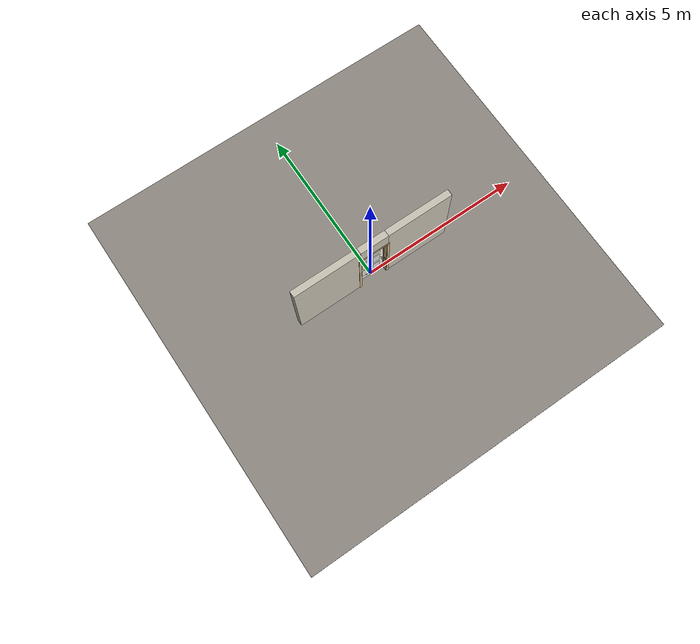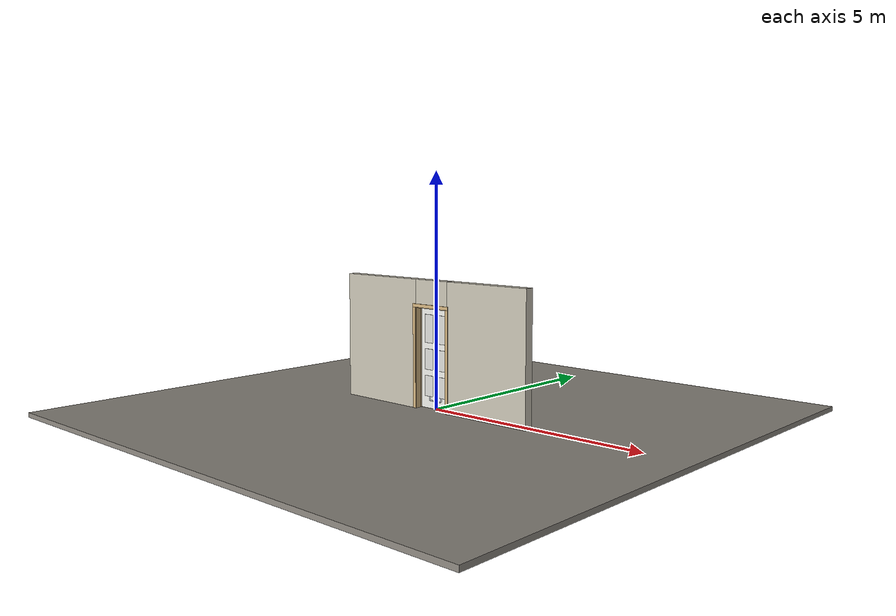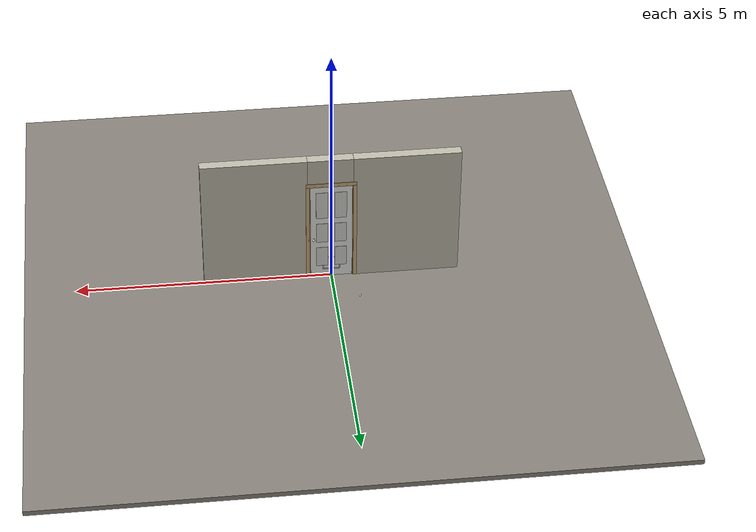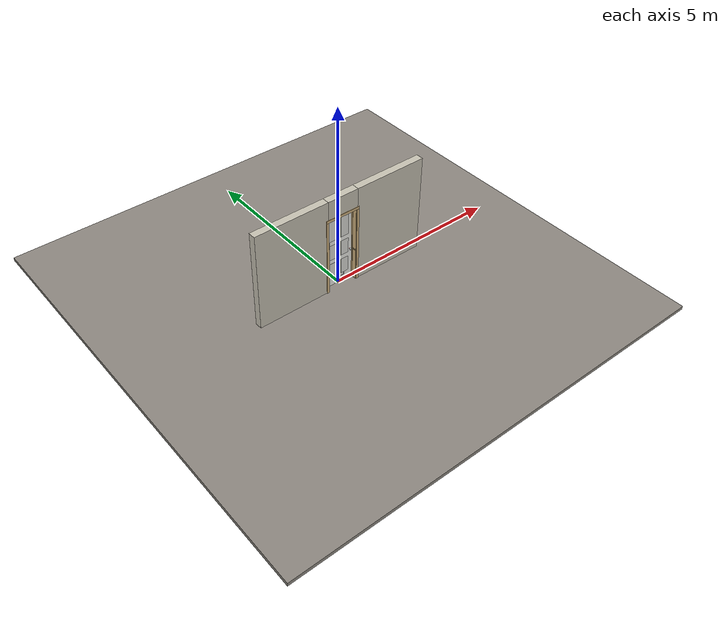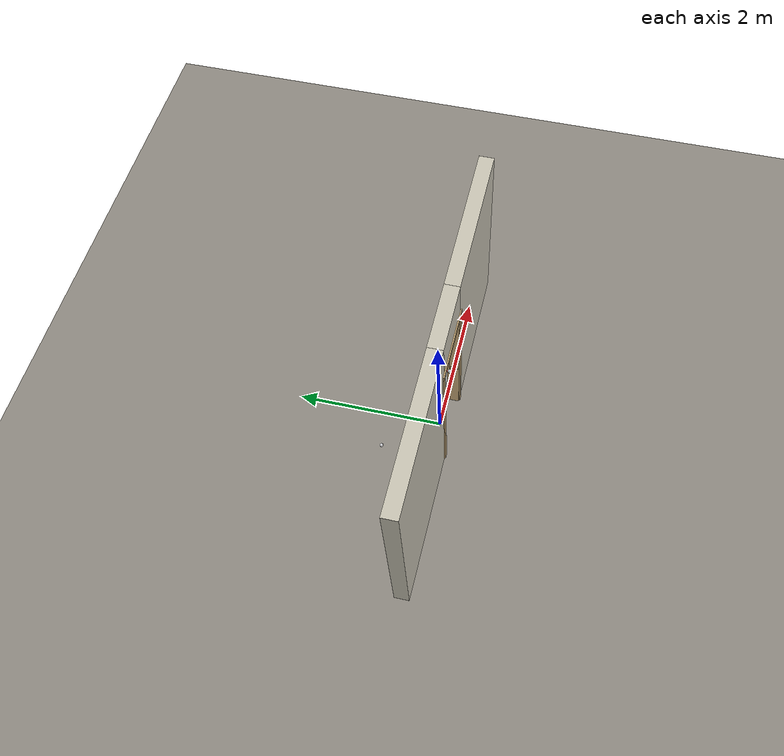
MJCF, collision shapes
<?xml version="1.0" ?>
<mujoco model="db0521_swing_single_full">
  <compiler angle="radian" meshdir="../../hardware" texturedir="../../textures" autolimits="true" inertiafromgeom="false"/>
  <option timestep="0.002" integrator="implicitfast" cone="elliptic" impratio="10" noslip_iterations="3">
    <flag multiccd="enable"/>
  </option>
  <size memory="16M"/>
  <default>
    <geom condim="4" solref="0.005 1" solimp="0.95 0.99 0.001"/>
    <joint solreflimit="0.005 1" solimplimit="0.95 0.99 0.001"/>
    <tendon solreflimit="0.005 1"/>
    <equality solref="0.002 1"/>
  </default>
  <visual>
    <headlight ambient="0.4 0.4 0.4" diffuse="0.7 0.7 0.7" specular="0.2 0.2 0.2"/>
    <quality shadowsize="4096"/>
    <map znear="0.01" zfar="60"/>
  </visual>
  <asset>
    <mesh name="hinge_c20a5829de" file="hinge_c20a5829de.obj"/>
    <mesh name="hinge_jamb_20499e6581" file="hinge_jamb_20499e6581.obj"/>
    <mesh name="knob_98a7916ed0" file="knob_98a7916ed0.obj"/>
    <material name="mat_floor" rgba="0.55 0.53 0.5 1" specular="0.2" shininess="0.15" reflectance="0"/>
    <material name="mat_wall" rgba="0.78 0.76 0.7 1" specular="0.2" shininess="0.1" reflectance="0"/>
    <material name="mat_hinge" rgba="0.55 0.56 0.58 1" specular="0.8" shininess="0.55" reflectance="0.4"/>
    <material name="mat_leaf" rgba="0.93 0.93 0.91 1" specular="0.2" shininess="0.47" reflectance="0"/>
    <material name="mat_leaf_panel" rgba="0.856 0.856 0.837 1" specular="0.2" shininess="0.47" reflectance="0"/>
    <material name="mat_op_glass_clear" rgba="0.85 0.92 0.95 0.25" specular="0.2" shininess="0.95" reflectance="0.1"/>
    <material name="mat_trim" rgba="0.85 0.66 0.3 1" specular="0.8" shininess="0.75" reflectance="0.4"/>
    <material name="mat_bolt" rgba="0.85 0.66 0.3 1" specular="0.8" shininess="0.75" reflectance="0.4"/>
    <material name="mat_frame" rgba="0.82 0.7 0.5 1" specular="0.2" shininess="0.45" reflectance="0"/>
    <material name="mat_seal" rgba="0.1 0.1 0.1 1" specular="0.2" shininess="0.1" reflectance="0"/>
    <material name="mat_vent" rgba="0.8 0.81 0.83 1" specular="0.8" shininess="0.6" reflectance="0.4"/>
    <material name="mat_stop" rgba="0.9 0.9 0.92 1" specular="0.8" shininess="0.9" reflectance="0.4"/>
    <texture name="skybox" type="skybox" builtin="gradient" rgb1="0.6 0.7 0.85" rgb2="0.9 0.92 0.95" width="256" height="256"/>
  </asset>
  <worldbody>
    <light name="sun" pos="1.5 -2.5 4" dir="-0.3 0.5 -0.8" directional="true" diffuse="0.8 0.8 0.8" specular="0.3 0.3 0.3" castshadow="true"/>
    <light name="fill" pos="-1.5 2.5 3" dir="0.3 -0.5 -0.7" directional="true" diffuse="0.35 0.35 0.4" castshadow="false"/>
    <camera name="robot_view" pos="0 -2.713312 1.812087" xyaxes="1 0 0 0 0.26963 0.962964" fovy="52"/>
    <camera name="far_view" pos="0 2.562312 1.812087" xyaxes="-1 0 0 0 -0.26963 0.962964" fovy="52"/>
    <camera name="iso" pos="2.004737 -2.291262 2.234138" xyaxes="0.741536 0.670913 0 -0.242917 0.268487 0.932151" fovy="46"/>
    <camera name="detail_handle" pos="0.526 -0.8625 1.194" xyaxes="0.97561 0.219512 0 -0.070934 0.315262 0.94635" fovy="38"/>
    <geom name="floor" type="box" size="6 6 0.05" pos="0 0 -0.05" material="mat_floor" group="0" contype="1" conaffinity="1" friction="0.8 0.005 0.0001" density="2400"/>
    <geom name="wall_left" type="box" size="1.0355 0.1 1.3735" pos="-1.4645 -0.0755 1.3735" material="mat_wall" group="0" contype="1" conaffinity="1" friction="0.6 0.005 0.0001" density="800"/>
    <geom name="wall_right" type="box" size="1.0205 0.1 1.3735" pos="1.4795 -0.0755 1.3735" material="mat_wall" group="0" contype="1" conaffinity="1" friction="0.6 0.005 0.0001" density="800"/>
    <geom name="wall_header" type="box" size="0.444 0.1 0.2755" pos="0.015 -0.0755 2.4715" material="mat_wall" group="0" contype="1" conaffinity="1" friction="0.6 0.005 0.0001" density="800"/>
    <geom name="hinge_0_jamb" type="mesh" mesh="hinge_jamb_20499e6581" pos="-0.407 0.0245 0.259" quat="0 1 0 0" material="mat_hinge" group="1" contype="0" conaffinity="0" density="7850"/>
    <geom name="hinge_1_jamb" type="mesh" mesh="hinge_jamb_20499e6581" pos="-0.407 0.0245 1.0708" quat="0 1 0 0" material="mat_hinge" group="1" contype="0" conaffinity="0" density="7850"/>
    <geom name="hinge_2_jamb" type="mesh" mesh="hinge_jamb_20499e6581" pos="-0.407 0.0245 1.9526" quat="0 1 0 0" material="mat_hinge" group="1" contype="0" conaffinity="0" density="7850"/>
    <geom name="jamb_hinge" type="box" size="0.0095 0.1 1.0735" pos="-0.4195 -0.0755 1.0735" material="mat_frame" group="0" contype="1" conaffinity="1" friction="0.6 0.005 0.0001" density="400"/>
    <geom name="strike_914_wall_n" type="box" size="0.0245 0.083825 0.0167" pos="0.4345 -0.091675 0.914" material="mat_frame" group="0" contype="1" conaffinity="1" friction="0.6 0.005 0.0001" density="400"/>
    <geom name="strike_914_wall_p" type="box" size="0.0245 0.008 0.0167" pos="0.4345 0.01585 0.914" material="mat_frame" group="0" contype="1" conaffinity="1" friction="0.6 0.005 0.0001" density="400"/>
    <geom name="strike_914_ramp" type="box" size="0.0245 0.01649 0.0167" pos="0.439136 0.028673 0.914" quat="0.977148 0 0 -0.212558" material="mat_frame" group="0" contype="1" conaffinity="1" friction="0.12 0.005 0.0001" density="400"/>
    <geom name="strike_914_back" type="box" size="0.01615 0.00785 0.0167" pos="0.44285 0 0.914" material="mat_frame" group="0" contype="1" conaffinity="1" friction="0.6 0.005 0.0001" density="400"/>
    <geom name="jamb_strike_0" type="box" size="0.0245 0.1 0.44865" pos="0.4345 -0.0755 0.44865" material="mat_frame" group="0" contype="1" conaffinity="1" friction="0.6 0.005 0.0001" density="400"/>
    <geom name="jamb_strike_1" type="box" size="0.0245 0.1 0.60815" pos="0.4345 -0.0755 1.53885" material="mat_frame" group="0" contype="1" conaffinity="1" friction="0.6 0.005 0.0001" density="400"/>
    <geom name="jamb_head" type="box" size="0.444 0.1 0.0095" pos="0.015 -0.0755 2.1565" material="mat_frame" group="0" contype="1" conaffinity="1" friction="0.6 0.005 0.0001" density="400"/>
    <geom name="head_stud" type="box" size="0.444 0.1 0.015" pos="0.015 -0.0755 2.181" material="mat_wall" group="0" contype="1" conaffinity="1" friction="0.6 0.005 0.0001" density="500"/>
    <geom name="stop_hinge" type="box" size="0.0055 0.016 1.0735" pos="-0.4045 -0.034 1.0735" material="mat_frame" group="0" contype="1" conaffinity="1" friction="0.6 0.005 0.0001" density="400"/>
    <geom name="stop_strike" type="box" size="0.0055 0.016 1.0735" pos="0.4045 -0.034 1.0735" material="mat_frame" group="0" contype="1" conaffinity="1" friction="0.6 0.005 0.0001" density="400"/>
    <geom name="stop_head" type="box" size="0.41 0.016 0.0055" pos="0 -0.034 2.1415" material="mat_frame" group="0" contype="1" conaffinity="1" friction="0.6 0.005 0.0001" density="400"/>
    <geom name="seal_hinge" type="box" size="0.004 0.002 1.0735" pos="-0.407 -0.0195 1.0735" material="mat_seal" group="1" contype="0" conaffinity="0" density="1100"/>
    <geom name="seal_strike" type="box" size="0.004 0.002 1.0735" pos="0.407 -0.0195 1.0735" material="mat_seal" group="1" contype="0" conaffinity="0" density="1100"/>
    <geom name="seal_head" type="box" size="0.39 0.002 0.008" pos="0 -0.0195 2.135" material="mat_seal" group="1" contype="0" conaffinity="0" density="1100"/>
    <geom name="casing_l_n" type="box" size="0.035 0.008 1.083" pos="-0.459 -0.1835 1.0735" material="mat_frame" group="2" contype="0" conaffinity="0" density="400"/>
    <geom name="casing_r_n" type="box" size="0.035 0.008 1.083" pos="0.459 -0.1835 1.0735" material="mat_frame" group="2" contype="0" conaffinity="0" density="400"/>
    <geom name="casing_h_n" type="box" size="0.494 0.008 0.035" pos="0 -0.1835 2.196" material="mat_frame" group="2" contype="0" conaffinity="0" density="400"/>
    <geom name="casing_l_p" type="box" size="0.035 0.008 1.083" pos="-0.459 0.0325 1.0735" material="mat_frame" group="2" contype="0" conaffinity="0" density="400"/>
    <geom name="casing_r_p" type="box" size="0.035 0.008 1.083" pos="0.459 0.0325 1.0735" material="mat_frame" group="2" contype="0" conaffinity="0" density="400"/>
    <geom name="casing_h_p" type="box" size="0.494 0.008 0.035" pos="0 0.0325 2.196" material="mat_frame" group="2" contype="0" conaffinity="0" density="400"/>
    <geom name="floor_stop_dome" type="sphere" size="0.025" pos="-0.487153 0.711177 0" material="mat_stop" group="0" contype="1" conaffinity="1" friction="0.6 0.005 0.0001" density="7000"/>
    <site name="approach_point" pos="0 -1.5 0" quat="1 0 0 0" size="0.05" rgba="0.2 0.9 0.2 0.5" group="4"/>
    <site name="goal_point" pos="0 1.5 0" quat="1 0 0 0" size="0.05" rgba="0.2 0.9 0.2 0.5" group="4"/>
    <site name="door_plane_center" pos="0 0 1.0735" quat="1 0 0 0" size="0.02" rgba="0.2 0.9 0.2 0.5" group="4"/>
    <body name="leaf_riser" pos="-0.41 0 0">
      <inertial pos="0.003 0.0245 0.055" mass="0.174012" quat="0.707107 0 0.707107 0" diaginertia="0.000017053 0.00002732 0.00002732"/>
      <joint name="leaf_rise" type="slide" axis="0 0 1" limited="true" range="0 0.0176" damping="1" armature="0.5"/>
      <geom name="leaf_riser_marker" type="cylinder" size="0.014 0.018" pos="0.003 0.0245 0.055" material="mat_hinge" group="1" contype="0" conaffinity="0" density="7850"/>
      <body name="leaf" pos="0 0 0">
        <inertial pos="0.392991 0.00069 1.016386" mass="13.430063" quat="-0.497761 0.500217 0.499845 0.502167" diaginertia="0.758987485 5.264368642 6.020047674"/>
        <joint name="leaf_hinge" type="hinge" axis="0 0 1" pos="0.003 0.0245 0" limited="true" range="0 1.658063" solreflimit="0.02 1" damping="0.218374" frictionloss="0.582834" armature="0.02"/>
        <geom name="leaf_slab" type="box" size="0.4065 0.0175 1.0618" pos="0.4095 0 1.0708" material="mat_leaf" group="0" contype="1" conaffinity="1" friction="0.35 0.005 0.0001" density="1"/>
        <geom name="leaf_panel_0_n" type="box" size="0.11575 0.003 0.220574" pos="0.22875 -0.0205 0.48317" material="mat_leaf_panel" group="1" contype="0" conaffinity="0" density="1"/>
        <geom name="leaf_panel_0_p" type="box" size="0.11575 0.003 0.220574" pos="0.22875 0.0205 0.48317" material="mat_leaf_panel" group="1" contype="0" conaffinity="0" density="1"/>
        <geom name="leaf_panel_1_n" type="box" size="0.11575 0.003 0.220574" pos="0.59025 -0.0205 0.48317" material="mat_leaf_panel" group="1" contype="0" conaffinity="0" density="1"/>
        <geom name="leaf_panel_1_p" type="box" size="0.11575 0.003 0.220574" pos="0.59025 0.0205 0.48317" material="mat_leaf_panel" group="1" contype="0" conaffinity="0" density="1"/>
        <geom name="leaf_panel_2_n" type="box" size="0.11575 0.003 0.220574" pos="0.22875 -0.0205 1.054317" material="mat_leaf_panel" group="1" contype="0" conaffinity="0" density="1"/>
        <geom name="leaf_panel_2_p" type="box" size="0.11575 0.003 0.220574" pos="0.22875 0.0205 1.054317" material="mat_leaf_panel" group="1" contype="0" conaffinity="0" density="1"/>
        <geom name="leaf_panel_3_n" type="box" size="0.11575 0.003 0.220574" pos="0.59025 -0.0205 1.054317" material="mat_leaf_panel" group="1" contype="0" conaffinity="0" density="1"/>
        <geom name="leaf_panel_3_p" type="box" size="0.11575 0.003 0.220574" pos="0.59025 0.0205 1.054317" material="mat_leaf_panel" group="1" contype="0" conaffinity="0" density="1"/>
        <geom name="leaf_panel_4_n" type="box" size="0.11575 0.003 0.300765" pos="0.22875 -0.0205 1.705655" material="mat_leaf_panel" group="1" contype="0" conaffinity="0" density="1"/>
        <geom name="leaf_panel_4_p" type="box" size="0.11575 0.003 0.300765" pos="0.22875 0.0205 1.705655" material="mat_leaf_panel" group="1" contype="0" conaffinity="0" density="1"/>
        <geom name="leaf_panel_5_n" type="box" size="0.11575 0.003 0.300765" pos="0.59025 -0.0205 1.705655" material="mat_leaf_panel" group="1" contype="0" conaffinity="0" density="1"/>
        <geom name="leaf_panel_5_p" type="box" size="0.11575 0.003 0.300765" pos="0.59025 0.0205 1.705655" material="mat_leaf_panel" group="1" contype="0" conaffinity="0" density="1"/>
        <geom name="hinge_0" type="mesh" mesh="hinge_c20a5829de" pos="0.003 0.0245 0.259" quat="0 1 0 0" material="mat_hinge" group="1" contype="0" conaffinity="0" density="7850"/>
        <geom name="hinge_1" type="mesh" mesh="hinge_c20a5829de" pos="0.003 0.0245 1.0708" quat="0 1 0 0" material="mat_hinge" group="1" contype="0" conaffinity="0" density="7850"/>
        <geom name="hinge_2" type="mesh" mesh="hinge_c20a5829de" pos="0.003 0.0245 1.9526" quat="0 1 0 0" material="mat_hinge" group="1" contype="0" conaffinity="0" density="7850"/>
        <geom name="leaf_latch_bolt_faceplate" type="box" size="0.0006 0.01235 0.0267" pos="0.8154 0 0.914" material="mat_bolt" group="1" contype="0" conaffinity="0" density="8500"/>
        <geom name="louver_vent_stile_n_l" type="box" size="0.012 0.002 0.137" pos="0.2475 -0.0195 0.314" material="mat_vent" group="2" contype="0" conaffinity="0" density="2700"/>
        <geom name="louver_vent_stile_n_r" type="box" size="0.012 0.002 0.137" pos="0.5715 -0.0195 0.314" material="mat_vent" group="2" contype="0" conaffinity="0" density="2700"/>
        <geom name="louver_vent_rail_n_b" type="box" size="0.15 0.002 0.012" pos="0.4095 -0.0195 0.177" material="mat_vent" group="2" contype="0" conaffinity="0" density="2700"/>
        <geom name="louver_vent_rail_n_t" type="box" size="0.15 0.002 0.012" pos="0.4095 -0.0195 0.451" material="mat_vent" group="2" contype="0" conaffinity="0" density="2700"/>
        <geom name="louver_vent_stile_p_l" type="box" size="0.012 0.002 0.137" pos="0.2475 0.0195 0.314" material="mat_vent" group="2" contype="0" conaffinity="0" density="2700"/>
        <geom name="louver_vent_stile_p_r" type="box" size="0.012 0.002 0.137" pos="0.5715 0.0195 0.314" material="mat_vent" group="2" contype="0" conaffinity="0" density="2700"/>
        <geom name="louver_vent_rail_p_b" type="box" size="0.15 0.002 0.012" pos="0.4095 0.0195 0.177" material="mat_vent" group="2" contype="0" conaffinity="0" density="2700"/>
        <geom name="louver_vent_rail_p_t" type="box" size="0.15 0.002 0.012" pos="0.4095 0.0195 0.451" material="mat_vent" group="2" contype="0" conaffinity="0" density="2700"/>
        <geom name="louver_vent_slat_0" type="box" size="0.15 0.0015 0.015" pos="0.4095 0 0.209833" quat="0.965926 -0.258819 0 0" material="mat_vent" group="2" contype="0" conaffinity="0" density="2700"/>
        <geom name="louver_vent_slat_1" type="box" size="0.15 0.0015 0.015" pos="0.4095 0 0.2515" quat="0.965926 -0.258819 0 0" material="mat_vent" group="2" contype="0" conaffinity="0" density="2700"/>
        <geom name="louver_vent_slat_2" type="box" size="0.15 0.0015 0.015" pos="0.4095 0 0.293167" quat="0.965926 -0.258819 0 0" material="mat_vent" group="2" contype="0" conaffinity="0" density="2700"/>
        <geom name="louver_vent_slat_3" type="box" size="0.15 0.0015 0.015" pos="0.4095 0 0.334833" quat="0.965926 -0.258819 0 0" material="mat_vent" group="2" contype="0" conaffinity="0" density="2700"/>
        <geom name="louver_vent_slat_4" type="box" size="0.15 0.0015 0.015" pos="0.4095 0 0.3765" quat="0.965926 -0.258819 0 0" material="mat_vent" group="2" contype="0" conaffinity="0" density="2700"/>
        <geom name="louver_vent_slat_5" type="box" size="0.15 0.0015 0.015" pos="0.4095 0 0.418167" quat="0.965926 -0.258819 0 0" material="mat_vent" group="2" contype="0" conaffinity="0" density="2700"/>
        <site name="leaf_edge_mid" pos="0.816 0 1.0618" quat="1 0 0 0" size="0.02" rgba="0.2 0.9 0.2 0.5" group="4"/>
        <body name="leaf_handle" pos="0.756 0 0.914">
          <inertial pos="0 -0.000502 0" mass="0.969385" quat="-0.5 0.5 -0.5 0.5" diaginertia="0.000215241 0.003035929 0.003035929"/>
          <joint name="leaf_handle_hinge" type="hinge" axis="0 -1 0" limited="true" range="0 0.8" damping="0.119588" frictionloss="0.032" stiffness="0.35" springref="-0.428571" armature="0.01"/>
          <geom name="leaf_handle_spindle" type="cylinder" size="0.006 0.0255" pos="0 0 0" quat="0.707107 -0.707107 0 0" material="mat_op_glass_clear" group="1" contype="0" conaffinity="0" density="7850"/>
          <geom name="leaf_handle_knob_n" type="mesh" mesh="knob_98a7916ed0" pos="0 -0.0175 0" quat="0.707107 0.707107 0 0" material="mat_op_glass_clear" group="1" contype="0" conaffinity="0" density="3000"/>
          <geom name="leaf_handle_knob_col_n" type="sphere" size="0.0234" pos="0 -0.0625 0" material="mat_op_glass_clear" group="0" contype="1" conaffinity="1" friction="0.9 0.01 0.0001" density="3000"/>
          <geom name="leaf_handle_knob_neck_n" type="cylinder" size="0.011 0.012" pos="0 -0.0295 0" quat="0.707107 -0.707107 0 0" material="mat_op_glass_clear" group="3" contype="1" conaffinity="1" rgba="0.8 0.3 0.3 0.25" friction="0.6 0.005 0.0001" density="3000"/>
          <geom name="leaf_handle_turn_button_n" type="cylinder" size="0.005 0.005" pos="0 -0.0873 0" quat="0.707107 -0.707107 0 0" material="mat_trim" group="1" contype="0" conaffinity="0" density="7100"/>
          <geom name="leaf_handle_knob_p" type="mesh" mesh="knob_98a7916ed0" pos="0 0.0175 0" quat="-0.707107 0.707107 0 0" material="mat_op_glass_clear" group="1" contype="0" conaffinity="0" density="3000"/>
          <geom name="leaf_handle_knob_col_p" type="sphere" size="0.0234" pos="0 0.0625 0" material="mat_op_glass_clear" group="0" contype="1" conaffinity="1" friction="0.9 0.01 0.0001" density="3000"/>
          <geom name="leaf_handle_knob_neck_p" type="cylinder" size="0.011 0.012" pos="0 0.0295 0" quat="0.707107 -0.707107 0 0" material="mat_op_glass_clear" group="3" contype="1" conaffinity="1" rgba="0.8 0.3 0.3 0.25" friction="0.6 0.005 0.0001" density="3000"/>
          <site name="leaf_handle_grip_n" pos="0 -0.0625 0" quat="1 0 0 0" size="0.012" rgba="0.2 0.9 0.2 0.5" group="4"/>
          <site name="leaf_handle_grip_p" pos="0 0.0625 0" quat="1 0 0 0" size="0.012" rgba="0.2 0.9 0.2 0.5" group="4"/>
        </body>
        <body name="leaf_latch_bolt" pos="0.816 0 0.914">
          <inertial pos="-0.00865 0 0" mass="0.041419" quat="0.92388 -0.382683 0 0" diaginertia="0.000000798 0.000005598 0.000005598"/>
          <joint name="leaf_latch_bolt_slide" type="slide" axis="-1 0 0" limited="true" range="0 0.0127" damping="2" frictionloss="0.3" stiffness="300" springref="-0.008333" armature="0.1"/>
          <geom name="leaf_latch_bolt_capsule" type="capsule" size="0.00635 0.015" pos="-0.00865 0 0" quat="0.707107 0 0.707107 0" material="mat_bolt" group="0" contype="1" conaffinity="1" friction="0.2 0.005 0.0001" density="8500"/>
        </body>
      </body>
    </body>
  </worldbody>
  <tendon>
    <fixed name="leaf_latch_bolt_coupling" limited="true" range="0 10">
      <joint joint="leaf_latch_bolt_slide" coef="1"/>
      <joint joint="leaf_handle_hinge" coef="-0.019538"/>
    </fixed>
  </tendon>
  <equality>
    <joint name="leaf_rise_couple" joint1="leaf_rise" joint2="leaf_hinge" polycoef="0 0.005093 0 0 0" active="true"/>
  </equality>
  <sensor>
    <jointpos name="leaf_hinge_pos" joint="leaf_hinge"/>
    <jointvel name="leaf_hinge_vel" joint="leaf_hinge"/>
    <jointpos name="leaf_handle_hinge_pos" joint="leaf_handle_hinge"/>
    <jointvel name="leaf_handle_hinge_vel" joint="leaf_handle_hinge"/>
    <jointpos name="leaf_latch_bolt_slide_pos" joint="leaf_latch_bolt_slide"/>
    <jointvel name="leaf_latch_bolt_slide_vel" joint="leaf_latch_bolt_slide"/>
  </sensor>
</mujoco>
